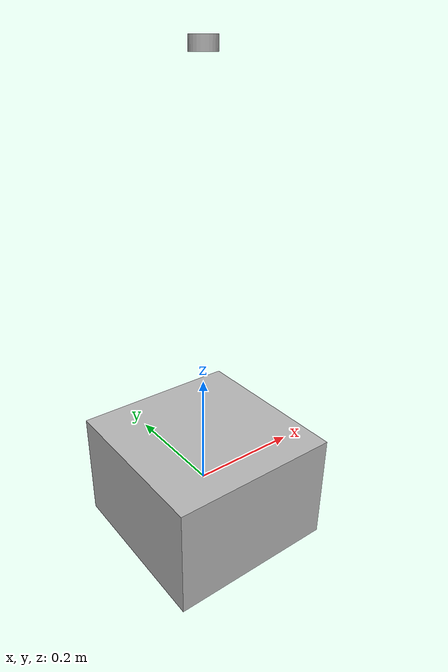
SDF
<?xml version='1.0'?>
<sdf version="1.6">
    <model name="iris_demo">
        <!-- add lidars -->
        <link name="lidar_link">
            <pose>0.0 0.0 0.0 0.0 0.0 0.0</pose>
            <inertial>
                <mass>10.0</mass>
                <inertia>
                    <ixx>0.0001</ixx>
                    <ixy>0.0</ixy>
                    <ixz>0.0</ixz>
                    <iyy>0.0001</iyy>
                    <iyz>0.0</iyz>
                    <izz>0.0001</izz>
                </inertia>
            </inertial>
            <collision name="lidar_collision">
                <geometry>
                    <box>
                        <size>0.3 0.3 0.2</size>
                    </box>
                </geometry>
            </collision>
            <visual name="lidar_visual">
                <geometry>
                    <box>
                        <size>0.3 0.3 0.2</size>
                    </box>
                </geometry>
            </visual>
        </link>

        <link name="mid360_link">
            <pose>0 0 0.7 0 0 0</pose>
            <inertial>
                <!-- place holder -->
                <mass>0.0001</mass>
                <inertia>
                    <ixx>0.001</ixx>
                    <ixy>0</ixy>
                    <ixz>0</ixz>
                    <iyy>0.001</iyy>
                    <iyz>0</iyz>
                    <izz>0.001</izz>
                </inertia>
            </inertial>
            <visual name='mid360_link_visual'>
                <geometry>
                    <cylinder>
                        <length>0.02</length>
                        <radius>0.02</radius>
                    </cylinder>
                </geometry>
            </visual>
            <sensor type="ray" name="laser_livox">
                <pose>0 0 0.0 0 0 0</pose>
                <visualize>True</visualize>
                <always_on>True</always_on>
                <update_rate>10</update_rate>
                <!-- This ray plugin is only for visualization. -->
                <plugin name="gazebo_ros_laser_controller" filename="liblivox_laser_simulation.so">
                    <ray>
                        <scan>
                            <horizontal>
                                <samples>100</samples>
                                <resolution>1</resolution>
                                <!-- 水平360° -->
                                <min_angle>0</min_angle>
                                <max_angle>6.28318</max_angle>
                            </horizontal>
                            <vertical>
                                <samples>360</samples>
                                <resolution>1</resolution>
                                <!-- 竖直-7°~52° -->
                                <min_angle>-0.12601266555555554</min_angle>
                                <max_angle>0.9637699988888888</max_angle>
                            </vertical>
                        </scan>
                        <range>
                            <min>0.1</min>
                            <max>40</max>
                            <resolution>0.002</resolution>
                        </range>
                        <noise>
                            <type>gaussian</type>
                            <mean>0.0</mean>
                            <stddev>0.01</stddev>
                        </noise>
                    </ray>
                    <visualize>True</visualize>
                    <samples>24000</samples>
                    <downsample>1</downsample>
                    <csv_file_name>mid360.csv</csv_file_name>
                    <publish_pointcloud_type>2</publish_pointcloud_type>
                    <ros_topic>/livox/lidar</ros_topic>
                    <frameName>base_link</frameName>
                </plugin>
            </sensor>
        </link>
        <joint name='mid360_joint' type='fixed'>
            <child>mid360_link</child>
            <parent>lidar_link</parent>
        </joint>

    </model>
</sdf>
